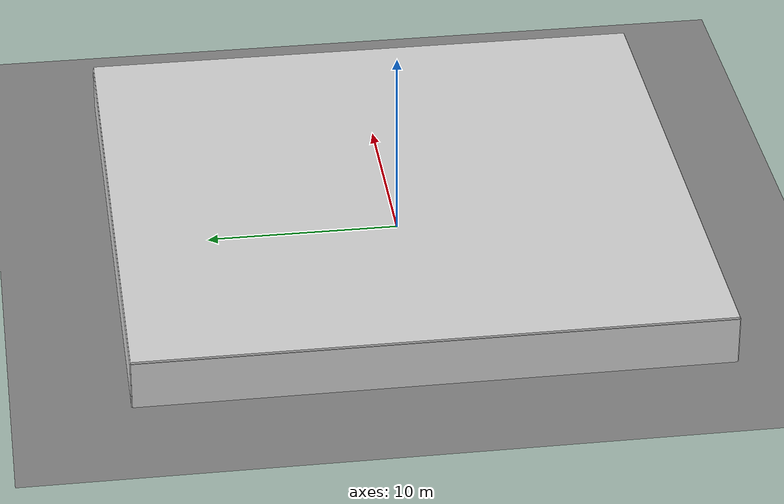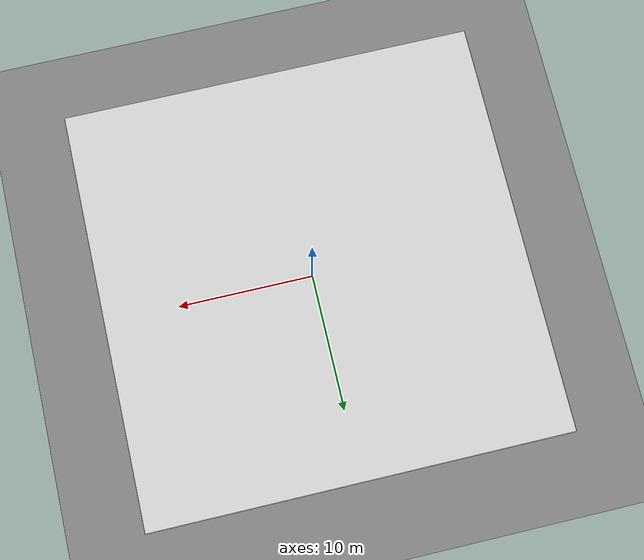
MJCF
<mujoco model="scene">

  <visual>
    <headlight diffuse="0.6 0.6 0.6" ambient="0.3 0.3 0.3" specular="0 0 0"/>
    <rgba haze="0.871 0.616 0.4 0.5"/>
    <global azimuth="-130" elevation="-20"/>
  </visual>

  <asset>
    <texture builtin="gradient" height="100" rgb1="0.9 0.9 0.9" rgb2="0.55 0.25 0.0" type="skybox" width="100"/>
    <include file="../../room/objects/materials.xml"/>
  </asset>

    <worldbody>
        <geom name="floor" friction="1 .1 .1" pos="0 0 0" size="0 0 0.125" type="plane" material="mat_floor" condim="3" conaffinity="1" contype="1" group="2"/>
        <light cutoff="1000" diffuse="1.5 1.5 1.5" dir="-0 0 -1.3" directional="true" exponent="10" pos="0 0 10.3" specular=".1 .1 .1" castshadow="false"/>

        <geom name="wall_negx" type="box" pos="-15.0 0.0 1.25" size="0.05 15.0 1.25" material="mat_wall"/>
        <geom name="wall_posx" type="box" pos=" 15.0 0.0 1.25" size="0.05 15.0 1.25" material="mat_wall"/>
        <geom name="wall_negy" type="box" pos="0.0 -15.0 1.25" size="15.0 0.05 1.25" material="mat_wall"/>
        <geom name="wall_posy" type="box" pos="0.0  15.0 1.25" size="15.0 0.05 1.25" material="mat_wall"/>

        <geom name="ceiling" type="box"
          pos="0 0 2.55"
          size="15.0 15.0 0.05"
          material="mat_wall"
          contype="1" conaffinity="1"
        />

        <!-- SCENARIO: FT1_BX_R_VF | Single cardboard_box, R view, x=7.5m -->

        <!-- TARGET: cardboard_box -->
        <body name="cardboard_box_target" pos="7.5000 0.0000 0.0" euler="0 0 0.0000">
          <include file="../../room/objects/cardboard_box.xml"/>
        </body>

        <!-- DISTRACTORS: none -->

    </worldbody>
</mujoco>

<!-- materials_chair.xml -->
<mujoco>
  <texture name="tex_wood_chair" type="2d" file="oak_veneer_01_diff_2k.png"/>
  <material name="mat_wood_chair"
            texture="tex_wood_chair"
            texrepeat="1.2 1.2"
            texuniform="true"
            rgba="1 1 1 1"
            specular="0.22"
            shininess="0.35"
            reflectance="0.04"/>
</mujoco>

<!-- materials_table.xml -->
<mujoco>
  <texture name="tex_wood_table" type="2d" file="wood_table_001_diff_2k.png"/>
  <material name="mat_wood_table"
            texture="tex_wood_table"
            texrepeat="1.2 1.2"
            texuniform="true"
            rgba="1 1 1 1"
            specular="0.22"
            shininess="0.35"
            reflectance="0.04"/>
</mujoco>

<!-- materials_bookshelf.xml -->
<mujoco>
  <texture name="tex_bookshelf_wood"
           type="2d"
           file="oak_veneer_01_diff_2k.png"/>

  <material name="mat_wood_bookshelf"
            texture="tex_bookshelf_wood"
            texrepeat="1.2 1.2"
            texuniform="true"
            rgba="1 1 1 1"
            specular="0.22"
            shininess="0.35"
            reflectance="0.04"/>
</mujoco>

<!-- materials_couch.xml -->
<mujoco>
  <texture name="tex_wood_couch" type="2d" file="wood_table_001_diff_2k.png"/>
  <material name="mat_wood_couch"
            texture="tex_wood_couch"
            texrepeat="1.2 1.2"
            texuniform="true"
            rgba="1 1 1 1"
            specular="0.22"
            shininess="0.35"
            reflectance="0.04"/>

  <texture name="tex_fabric" type="2d" file="rough_linen_diff_2k.png"/>
  <material name="mat_fabric"
            texture="tex_fabric"
            texrepeat="1.2 1.2"
            texuniform="true"
            rgba="1 1 1 1"
            specular="0.10"
            shininess="0.08"
            reflectance="0.01"/>
</mujoco>

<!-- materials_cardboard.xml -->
<mujoco>
  <texture name="tex_cardboard" type="2d" file="cardboard.png"/>
  <material name="mat_cardboard"
            texture="tex_cardboard"
            texrepeat="1.2 1.2"
            texuniform="true"
            rgba="1 1 1 1"
            specular="0.10"
            shininess="0.08"
            reflectance="0.01"/>
</mujoco>

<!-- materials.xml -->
<mujoco>
  <material name="mat_wall" rgba="0.85 0.85 0.85 1"/>
  <include file="materials_chair.xml"/>

  <include file="materials_table.xml"/>

  <include file="materials_bookshelf.xml"/>
  <material name="mat_book_red" rgba="0.70 0.18 0.16 1"/>
  <material name="mat_book_blue" rgba="0.16 0.31 0.62 1"/>
  <material name="mat_book_green" rgba="0.22 0.45 0.24 1"/>
  <material name="mat_book_yellow" rgba="0.78 0.66 0.22 1"/>
  <material name="mat_book_dark" rgba="0.20 0.18 0.17 1"/>

  <include file="materials_couch.xml"/>
  <include file="materials_cardboard.xml"/>

  <texture name="tex_metal" type="2d" file="metal.png"/>
  <material name="mat_metal" texture="tex_metal" texrepeat="2 2" reflectance="0.3"/>
  <material name="mat_trash_can_dark_green"
            texture="tex_metal"
            texrepeat="2 2"
            rgba="0.10 0.18 0.12 1"
            specular="0.18"
            shininess="0.20"
            reflectance="0.02"/>

  <texture name="tex_floor" type="2d" builtin="checker" width="512" height="512"
           rgb1="0.55 0.55 0.55" rgb2="0.50 0.50 0.50"/>
  <material name="mat_floor" texture="tex_floor" texrepeat="4 4" reflectance="0.00"/>

</mujoco>

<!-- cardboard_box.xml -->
<mujoco>
  <body>
    <geom name="cardboard_box_base" type="box" pos="0 0 0.015" size="0.20 0.20 0.015" material="mat_cardboard"/>
    <geom name="cardboard_box_wall_front" type="box" pos="0  0.185 0.155" size="0.20 0.015 0.125" material="mat_cardboard"/>
    <geom name="cardboard_box_wall_back" type="box" pos="0 -0.185 0.155" size="0.20 0.015 0.125" material="mat_cardboard"/>
    <geom name="cardboard_box_wall_left" type="box" pos="-0.185 0 0.155" size="0.015 0.20 0.125" material="mat_cardboard"/>
    <geom name="cardboard_box_wall_right" type="box" pos=" 0.185 0 0.155" size="0.015 0.20 0.125" material="mat_cardboard"/>
  </body>
</mujoco>
